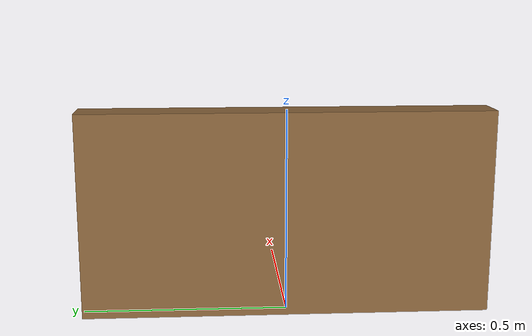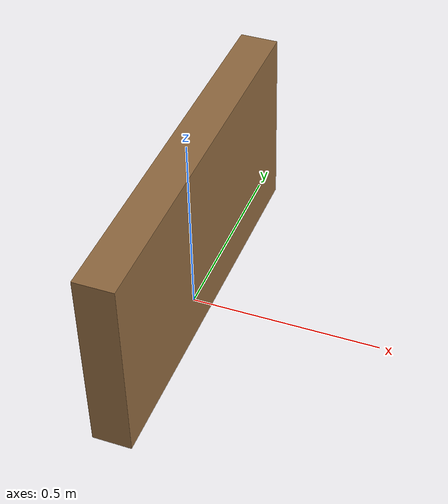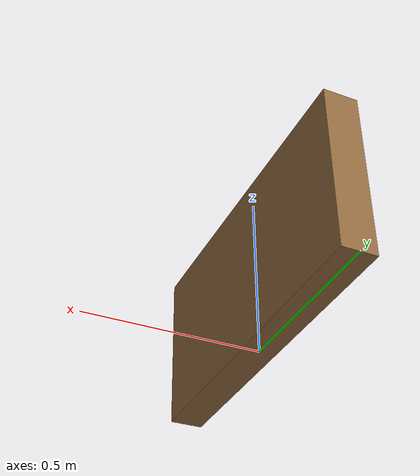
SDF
<?xml version='1.0'?>
<sdf version='1.5'>
  <model name='papptown_wall'>
    <static>1</static>
    <link name='papptown_wall::link'>
      <pose frame=''>0 0 0.25 0 -0 0</pose>
      <collision name='collision'>
        <geometry>
          <box>
            <size>0.1 1.0 0.5</size>
          </box>
        </geometry>
        <max_contacts>10</max_contacts>
        <surface>
          <contact>
            <ode/>
          </contact>
          <bounce/>
          <friction>
            <torsional>
              <ode/>
            </torsional>
            <ode/>
          </friction>
        </surface>
      </collision>
      <visual name='visual'>
        <geometry>
          <box>
            <size>0.1 1.0 0.5</size>
          </box>
        </geometry>
        <material>
          <ambient>0.5 0.5 0.5 1</ambient>
          <diffuse>0.57 0.417 0.25 1</diffuse>
          <specular>0.1 0.1 0.1 1</specular>
          <emissive>0 0 0 0</emissive>
        </material>
      </visual>
      <self_collide>0</self_collide>
      <kinematic>0</kinematic>
      <gravity>1</gravity>
    </link>
    <allow_auto_disable>1</allow_auto_disable>
  </model>
</sdf>
